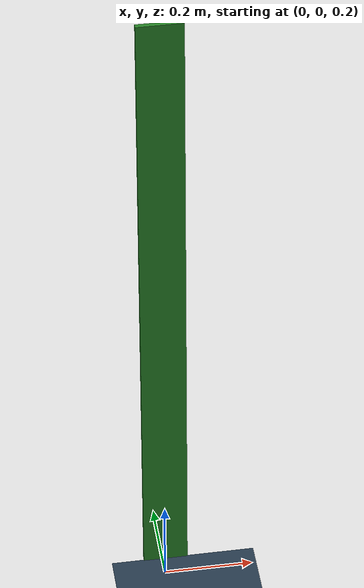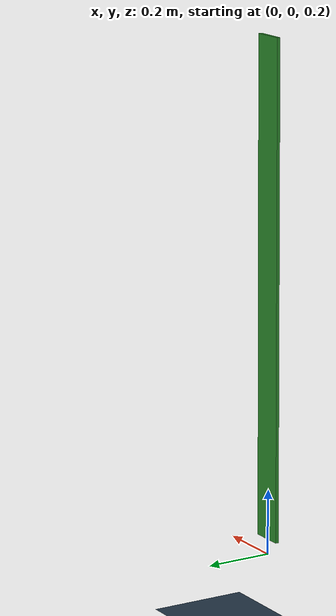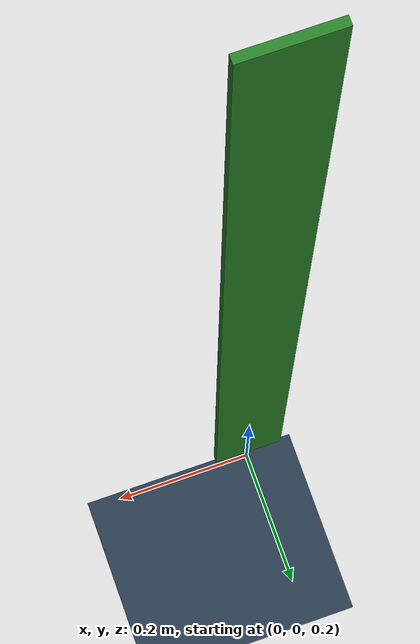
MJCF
<mujoco model="simple_cube">

    <include file="scene.xml"/>

    <option solver="CG" tolerance="1e-6"/>

    <size nconmax="50" njmax="500" nstack="50000"/>

    <worldbody>
      <body name="link1" pos="0 0 1">
          <geom type="box" size="0.05 0.005 0.75" rgba="0.15 0.5 0.15 1"/>
          <joint name="q1" type="hinge" pos="0 0 0.75" axis="0 1 0" frictionloss="0.0" damping="0"/>
      </body>
    </worldbody>

    <actuator>
        <motor name="motor_1" joint="q1" gear="1"/>
    </actuator>
</mujoco>

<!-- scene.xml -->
<mujoco>
    <statistic extent="2" meansize=".05"/>

    <option timestep="0.005" solver="Newton" iterations="30" tolerance="1e-10" jacobian="sparse" cone="pyramidal"/>

    <visual>
        <rgba haze="0.15 0.25 0.35 1"/>
        <quality shadowsize="2048"/>
        <map stiffness="700" shadowscale="0.5" fogstart="10" fogend="15" zfar="40" haze="0.3"/>
    </visual>

    <asset>
        <texture type="skybox" builtin="gradient" rgb1="0.3 0.5 0.7" rgb2="0 0 0" width="512" height="512"/>
        <texture name="texplane" type="2d" builtin="checker" rgb1=".2 .3 .4" rgb2=".1 0.15 0.2"
            width="512" height="512" mark="cross" markrgb=".8 .8 .8"/>

        <material name="matplane" reflectance="0.3" texture="texplane" texrepeat="1 1" texuniform="true"/>
    </asset>

    <worldbody>
        <light directional="true" diffuse=".4 .4 .4" specular="0.1 0.1 0.1" pos="0 0 5.0" dir="0 0 -1" castshadow="false"/>
        <light directional="true" diffuse=".6 .6 .6" specular="0.2 0.2 0.2" pos="0 0 4" dir="0 0 -1"/>

        <geom name="ground" type="plane" size="0 0 1" pos="0 0 0" quat="1 0 0 0" material="matplane" condim="1" friction="0 0 0"/>

    </worldbody>
</mujoco>
